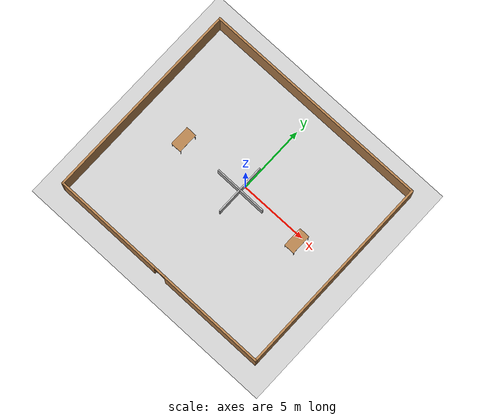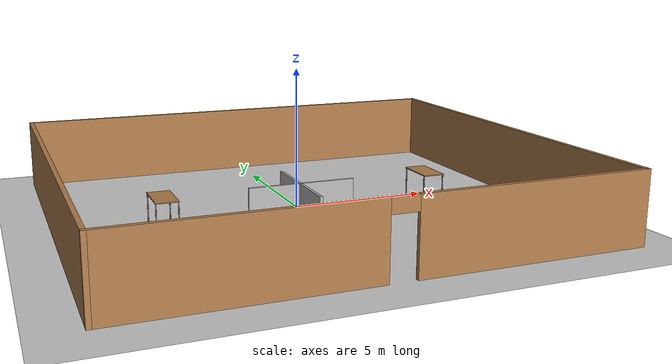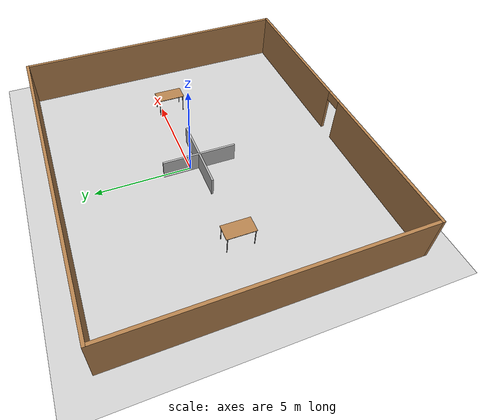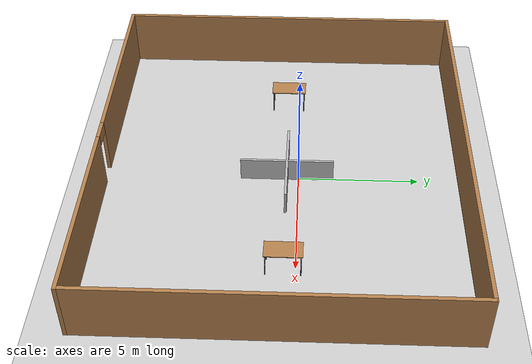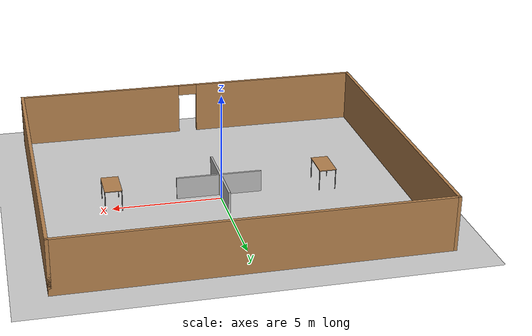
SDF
<sdf version="1.7">
 <world name="default">
  <light name="sun" type="directional">
   <pose>0 0 10 0 -0 0</pose>
   <diffuse>0.8 0.8 0.8 1</diffuse>
   <specular>0.2 0.2 0.2 1</specular>
   <attenuation>
    <range>1000</range>
    <constant>0.9</constant>
    <linear>0.01</linear>
    <quadratic>0.001</quadratic>
   </attenuation>
   <direction>-0.5 0.1 -0.9</direction>
   <spot><inner_angle>0</inner_angle><outer_angle>0</outer_angle><falloff>0</falloff></spot>
  </light>
  <model name="ground_plane">
   <static>1</static>
   <link name="link">
    <collision name="collision">
     <geometry><plane><normal>0 0 1</normal><size>100 100</size></plane></geometry>
     <surface>
      <contact><collide_bitmask>65535</collide_bitmask></contact>
      <friction><ode><mu>100</mu><mu2>50</mu2></ode></friction>
     </surface>
    </collision>
    <visual name="visual">
     <cast_shadows>0</cast_shadows>
     <geometry><plane><normal>0 0 1</normal><size>100 100</size></plane></geometry>
     <material>
      <script><uri>file://media/materials/scripts/gazebo.material</uri><name>Gazebo/Grey</name></script>
     </material>
    </visual>
   </link>
  </model>
  <gravity>0 0 -9.8</gravity>
  <magnetic_field>6e-06 2.3e-05 -4.2e-05</magnetic_field>
  <atmosphere type="adiabatic"/>
  <physics type="ode">
   <max_step_size>0.001</max_step_size>
   <real_time_factor>1</real_time_factor>
   <real_time_update_rate>1000</real_time_update_rate>
  </physics>
  <scene><ambient>0.4 0.4 0.4 1</ambient><background>0.7 0.7 0.7 1</background><shadows>1</shadows></scene>
  <spherical_coordinates>
   <surface_model>EARTH_WGS84</surface_model>
   <latitude_deg>0</latitude_deg>
   <longitude_deg>0</longitude_deg>
   <elevation>0</elevation>
   <heading_deg>0</heading_deg>
  </spherical_coordinates>
  <model name="wall_frame">
   <pose>-0.08762 -0.67526 0 0 -0 0</pose>
   <link name="Wall_5">
    <collision name="Wall_5_Collision">
     <geometry><box><size>17 0.15 2.5</size></box></geometry>
     <pose>0 0 1.25 0 -0 0</pose>
    </collision>
    <visual name="Wall_5_Visual">
     <pose>0 0 1.25 0 -0 0</pose>
     <geometry><box><size>17 0.15 2.5</size></box></geometry>
     <material>
      <script><uri>file://media/materials/scripts/gazebo.material</uri><name>Gazebo/Wood</name></script>
      <ambient>1 1 1 1</ambient>
     </material>
     <meta><layer>0</layer></meta>
    </visual>
    <pose>0 7.425 0 0 -0 0</pose>
   </link>
   <link name="Wall_6">
    <collision name="Wall_6_Collision">
     <geometry><box><size>15 0.15 2.5</size></box></geometry>
     <pose>0 0 1.25 0 -0 0</pose>
    </collision>
    <visual name="Wall_6_Visual">
     <pose>0 0 1.25 0 -0 0</pose>
     <geometry><box><size>15 0.15 2.5</size></box></geometry>
     <material>
      <script><uri>file://media/materials/scripts/gazebo.material</uri><name>Gazebo/Wood</name></script>
      <ambient>1 1 1 1</ambient>
     </material>
     <meta><layer>0</layer></meta>
    </visual>
    <pose>8.425 0 0 0 -0 -1.5708</pose>
   </link>
   <link name="Wall_7">
    <pose>0 -7.425 0 0 -0 3.14159</pose>
    <visual name="Wall_7_Visual_0">
     <pose>-4.52902 0 1.25 0 -0 0</pose>
     <geometry><box><size>7.94196 0.15 2.5</size></box></geometry>
     <material>
      <script><uri>file://media/materials/scripts/gazebo.material</uri><name>Gazebo/Wood</name></script>
      <ambient>1 1 1 1</ambient>
     </material>
     <meta><layer>0</layer></meta>
    </visual>
    <collision name="Wall_7_Collision_0">
     <geometry><box><size>7.94196 0.15 2.5</size></box></geometry>
     <pose>-4.52902 0 1.25 0 -0 0</pose>
    </collision>
    <visual name="Wall_7_Visual_1">
     <pose>4.42098 0 1.25 0 -0 0</pose>
     <geometry><box><size>8.15804 0.15 2.5</size></box></geometry>
     <material>
      <script><uri>file://media/materials/scripts/gazebo.material</uri><name>Gazebo/Wood</name></script>
      <ambient>1 1 1 1</ambient>
     </material>
     <meta><layer>0</layer></meta>
    </visual>
    <collision name="Wall_7_Collision_1">
     <geometry><box><size>8.15804 0.15 2.5</size></box></geometry>
     <pose>4.42098 0 1.25 0 -0 0</pose>
    </collision>
    <visual name="Wall_7_Visual_2">
     <pose>-0.108036 0 2.25 0 -0 0</pose>
     <geometry><box><size>0.9 0.15 0.5</size></box></geometry>
     <material>
      <script><uri>file://media/materials/scripts/gazebo.material</uri><name>Gazebo/Wood</name></script>
      <ambient>1 1 1 1</ambient>
     </material>
     <meta><layer>0</layer></meta>
    </visual>
    <collision name="Wall_7_Collision_2">
     <geometry><box><size>0.9 0.15 0.5</size></box></geometry>
     <pose>-0.108036 0 2.25 0 -0 0</pose>
    </collision>
   </link>
   <link name="Wall_8">
    <collision name="Wall_8_Collision">
     <geometry><box><size>15 0.15 2.5</size></box></geometry>
     <pose>0 0 1.25 0 -0 0</pose>
    </collision>
    <visual name="Wall_8_Visual">
     <pose>0 0 1.25 0 -0 0</pose>
     <geometry><box><size>15 0.15 2.5</size></box></geometry>
     <material>
      <script><uri>file://media/materials/scripts/gazebo.material</uri><name>Gazebo/Wood</name></script>
      <ambient>1 1 1 1</ambient>
     </material>
     <meta><layer>0</layer></meta>
    </visual>
    <pose>-8.425 0 0 0 -0 1.5708</pose>
   </link>
   <static>1</static>
  </model>
  <model name="room_wall_2x5m">
   <link name="link">
    <visual name="visual">
     <geometry><box><size>0.1 3.87581 2</size></box></geometry>
     <material>
      <script>
       <uri>model://room_wall_2x5m/material/script</uri>
       <uri>model://room_wall_2x5m/material/textures</uri>
       <name>Custom/room_wall_2x5m</name>
      </script>
     </material>
    </visual>
    <collision name="collision"><geometry><box><size>0.1 3.87581 2</size></box></geometry></collision>
   </link>
   <static>1</static>
   <pose>-0.045706 -0.496462 0 0 -0 0</pose>
  </model>
  <model name="room_wall_2x5m_0">
   <link name="link">
    <visual name="visual">
     <geometry><box><size>0.1 3.95153 2</size></box></geometry>
     <material>
      <script>
       <uri>model://room_wall_2x5m/material/script</uri>
       <uri>model://room_wall_2x5m/material/textures</uri>
       <name>Custom/room_wall_2x5m</name>
      </script>
     </material>
    </visual>
    <collision name="collision"><geometry><box><size>0.1 3.95153 2</size></box></geometry></collision>
   </link>
   <static>1</static>
   <pose>0.009739 -0.493283 0 0 0 -1.57573</pose>
  </model>
  <model name="Table">
   <static>1</static>
   <link name="link">
    <collision name="surface">
     <pose>0 0 1 0 -0 0</pose>
     <geometry><box><size>1.5 0.8 0.03</size></box></geometry>
     <surface><friction><ode><mu>0.6</mu><mu2>0.6</mu2></ode></friction></surface>
    </collision>
    <visual name="visual">
     <pose>0 0 1 0 -0 0</pose>
     <geometry><box><size>1.5 0.8 0.03</size></box></geometry>
     <material>
      <diffuse>1 1 1 1</diffuse>
      <script><uri>file://media/materials/scripts/gazebo.material</uri><name>Gazebo/Wood</name></script>
      <pbr><metal><albedo_map>model://Table/Table_Diffuse.jpg</albedo_map></metal></pbr>
     </material>
    </visual>
    <collision name="front_left_leg_collision">
     <pose>0.68 0.38 0.5 0 -0 0</pose>
     <geometry><cylinder><radius>0.02</radius><length>1</length></cylinder></geometry>
    </collision>
    <visual name="front_left_leg_visual">
     <pose>0.68 0.38 0.5 0 -0 0</pose>
     <geometry><cylinder><radius>0.02</radius><length>1</length></cylinder></geometry>
     <material>
      <diffuse>0.5 0.5 0.5 1</diffuse>
      <script><uri>file://media/materials/scripts/gazebo.material</uri><name>Gazebo/Grey</name></script>
     </material>
    </visual>
    <collision name="front_right_leg_collision">
     <pose>0.68 -0.38 0.5 0 -0 0</pose>
     <geometry><cylinder><radius>0.02</radius><length>1</length></cylinder></geometry>
    </collision>
    <visual name="front_right_leg_visual">
     <pose>0.68 -0.38 0.5 0 -0 0</pose>
     <geometry><cylinder><radius>0.02</radius><length>1</length></cylinder></geometry>
     <material>
      <diffuse>0.5 0.5 0.5 1</diffuse>
      <script><uri>file://media/materials/scripts/gazebo.material</uri><name>Gazebo/Grey</name></script>
     </material>
    </visual>
    <collision name="back_right_leg_collision">
     <pose>-0.68 -0.38 0.5 0 -0 0</pose>
     <geometry><cylinder><radius>0.02</radius><length>1</length></cylinder></geometry>
    </collision>
    <visual name="back_right_leg_visual">
     <pose>-0.68 -0.38 0.5 0 -0 0</pose>
     <geometry><cylinder><radius>0.02</radius><length>1</length></cylinder></geometry>
     <material>
      <diffuse>0.5 0.5 0.5 1</diffuse>
      <script><uri>file://media/materials/scripts/gazebo.material</uri><name>Gazebo/Grey</name></script>
     </material>
    </visual>
    <collision name="back_left_leg_collision">
     <pose>-0.68 0.38 0.5 0 -0 0</pose>
     <geometry><cylinder><radius>0.02</radius><length>1</length></cylinder></geometry>
    </collision>
    <visual name="back_left_leg_visual">
     <pose>-0.68 0.38 0.5 0 -0 0</pose>
     <geometry><cylinder><radius>0.02</radius><length>1</length></cylinder></geometry>
     <material>
      <diffuse>0.5 0.5 0.5 1</diffuse>
      <script><uri>file://media/materials/scripts/gazebo.material</uri><name>Gazebo/Grey</name></script>
     </material>
    </visual>
   </link>
   <pose>4.95697 -0.474141 0 0 -0 1.56755</pose>
  </model>
  <model name="Table_0">
   <static>1</static>
   <link name="link">
    <collision name="surface">
     <pose>0 0 1 0 -0 0</pose>
     <geometry><box><size>1.5 0.8 0.03</size></box></geometry>
     <surface><friction><ode><mu>0.6</mu><mu2>0.6</mu2></ode></friction></surface>
    </collision>
    <visual name="visual">
     <pose>0 0 1 0 -0 0</pose>
     <geometry><box><size>1.5 0.8 0.03</size></box></geometry>
     <material>
      <diffuse>1 1 1 1</diffuse>
      <script><uri>file://media/materials/scripts/gazebo.material</uri><name>Gazebo/Wood</name></script>
      <pbr><metal><albedo_map>model://Table/Table_Diffuse.jpg</albedo_map></metal></pbr>
     </material>
    </visual>
    <collision name="front_left_leg_collision">
     <pose>0.68 0.38 0.5 0 -0 0</pose>
     <geometry><cylinder><radius>0.02</radius><length>1</length></cylinder></geometry>
    </collision>
    <visual name="front_left_leg_visual">
     <pose>0.68 0.38 0.5 0 -0 0</pose>
     <geometry><cylinder><radius>0.02</radius><length>1</length></cylinder></geometry>
     <material>
      <diffuse>0.5 0.5 0.5 1</diffuse>
      <script><uri>file://media/materials/scripts/gazebo.material</uri><name>Gazebo/Grey</name></script>
     </material>
    </visual>
    <collision name="front_right_leg_collision">
     <pose>0.68 -0.38 0.5 0 -0 0</pose>
     <geometry><cylinder><radius>0.02</radius><length>1</length></cylinder></geometry>
    </collision>
    <visual name="front_right_leg_visual">
     <pose>0.68 -0.38 0.5 0 -0 0</pose>
     <geometry><cylinder><radius>0.02</radius><length>1</length></cylinder></geometry>
     <material>
      <diffuse>0.5 0.5 0.5 1</diffuse>
      <script><uri>file://media/materials/scripts/gazebo.material</uri><name>Gazebo/Grey</name></script>
     </material>
    </visual>
    <collision name="back_right_leg_collision">
     <pose>-0.68 -0.38 0.5 0 -0 0</pose>
     <geometry><cylinder><radius>0.02</radius><length>1</length></cylinder></geometry>
    </collision>
    <visual name="back_right_leg_visual">
     <pose>-0.68 -0.38 0.5 0 -0 0</pose>
     <geometry><cylinder><radius>0.02</radius><length>1</length></cylinder></geometry>
     <material>
      <diffuse>0.5 0.5 0.5 1</diffuse>
      <script><uri>file://media/materials/scripts/gazebo.material</uri><name>Gazebo/Grey</name></script>
     </material>
    </visual>
    <collision name="back_left_leg_collision">
     <pose>-0.68 0.38 0.5 0 -0 0</pose>
     <geometry><cylinder><radius>0.02</radius><length>1</length></cylinder></geometry>
    </collision>
    <visual name="back_left_leg_visual">
     <pose>-0.68 0.38 0.5 0 -0 0</pose>
     <geometry><cylinder><radius>0.02</radius><length>1</length></cylinder></geometry>
     <material>
      <diffuse>0.5 0.5 0.5 1</diffuse>
      <script><uri>file://media/materials/scripts/gazebo.material</uri><name>Gazebo/Grey</name></script>
     </material>
    </visual>
   </link>
   <pose>-4.98927 -0.55135 0 0 0 -1.57888</pose>
  </model>
 </world>
</sdf>
